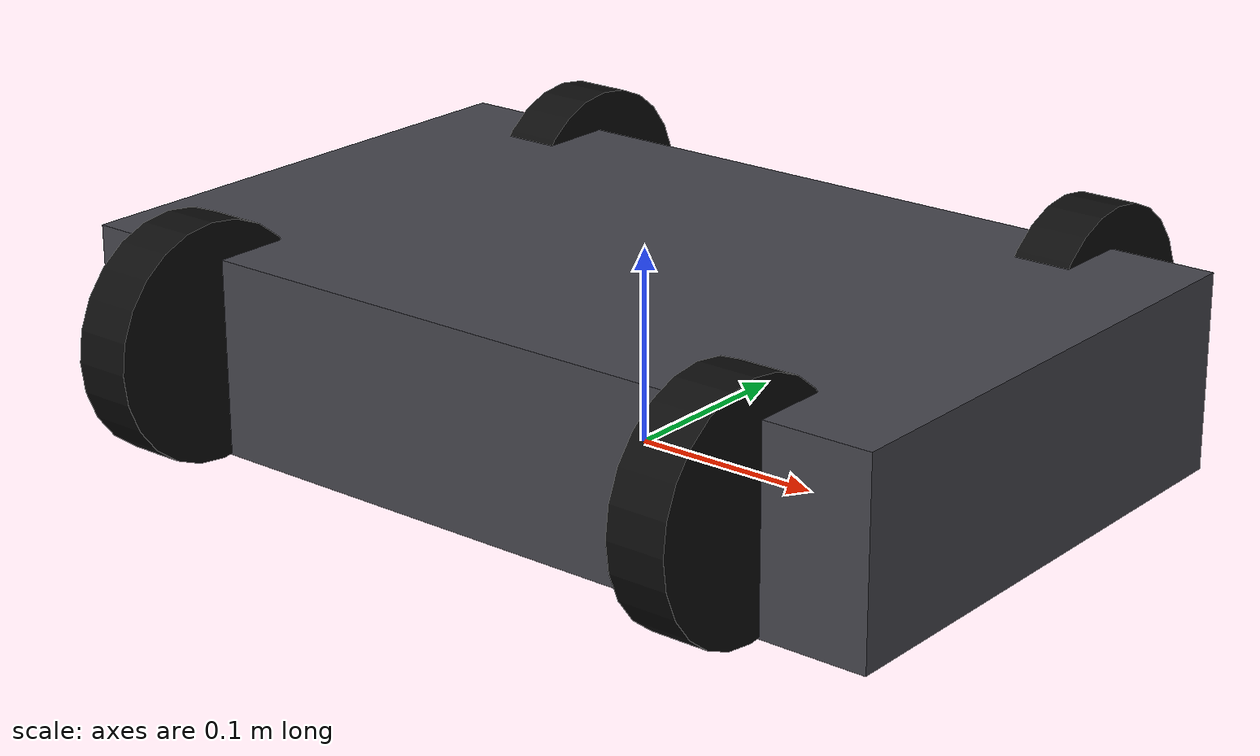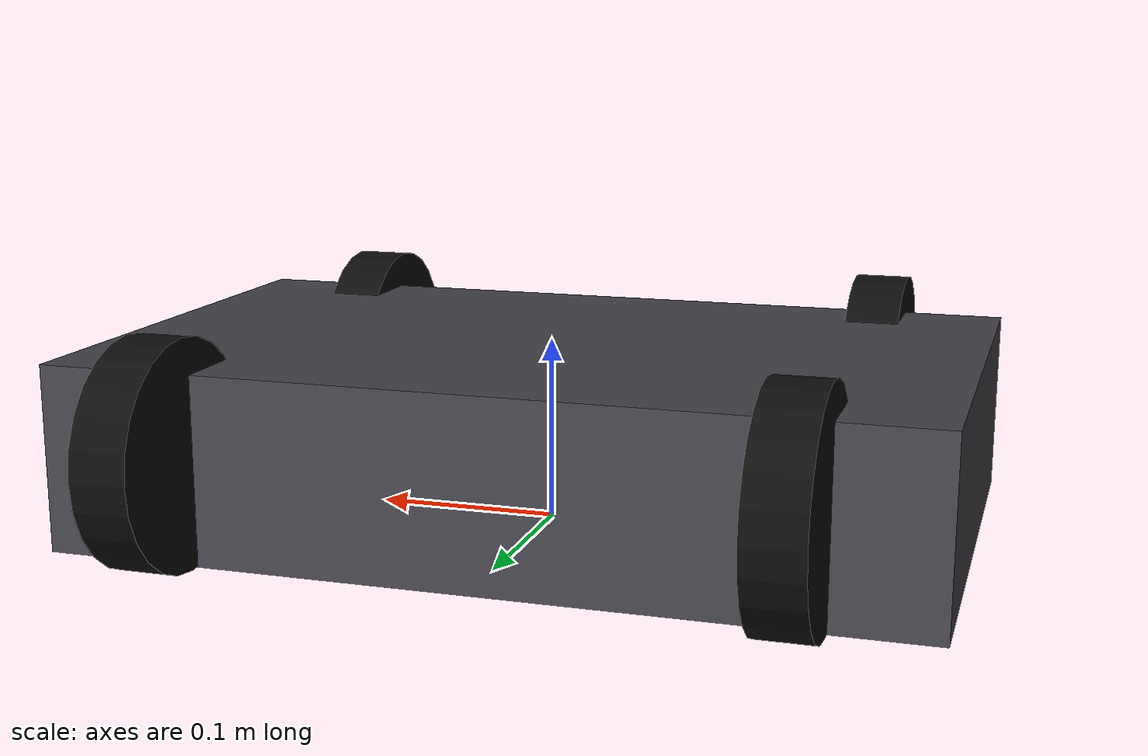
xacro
<?xml version="1.0"?>
<robot name="rc_car" xmlns:xacro="http://www.ros.org/wiki/xacro">
  <!-- Basic dimensions -->
  <xacro:property name="chassis_length" value="0.46"/>
  <xacro:property name="chassis_width" value="0.28"/>
  <xacro:property name="chassis_height" value="0.10"/>
  <xacro:property name="wheel_radius" value="0.06"/>
  <xacro:property name="wheel_thickness" value="0.03"/>

  <!-- Placement helpers -->
  <xacro:property name="wheel_base_x" value="${chassis_length / 2.0 - 0.07}"/>
  <xacro:property name="wheel_track_y" value="${chassis_width / 2.0 + wheel_thickness / 2.0 - 0.01}"/>
  <xacro:property name="axle_height" value="${wheel_radius}"/>

  <!-- Mass and inertia approximations -->
  <xacro:property name="chassis_mass" value="3.0"/>
  <xacro:property name="wheel_mass" value="0.25"/>
  <xacro:property name="steer_mass" value="0.05"/>

  <xacro:property name="chassis_ixx" value="${chassis_mass / 12.0 * (chassis_height*chassis_height + chassis_width*chassis_width)}"/>
  <xacro:property name="chassis_iyy" value="${chassis_mass / 12.0 * (chassis_length*chassis_length + chassis_height*chassis_height)}"/>
  <xacro:property name="chassis_izz" value="${chassis_mass / 12.0 * (chassis_length*chassis_length + chassis_width*chassis_width)}"/>

  <xacro:property name="wheel_ixx" value="${wheel_mass / 12.0 * (3*wheel_radius*wheel_radius + wheel_thickness*wheel_thickness)}"/>
  <xacro:property name="wheel_iyy" value="${wheel_ixx}"/>
  <xacro:property name="wheel_izz" value="${0.5 * wheel_mass * wheel_radius * wheel_radius}"/>

  <!-- Materials -->
  <material name="chassis_grey">
    <color rgba="0.27 0.27 0.3 1.0"/>
  </material>
  <material name="wheel_black">
    <color rgba="0.05 0.05 0.05 1.0"/>
  </material>

  <xacro:macro name="wheel" params="name parent xyz">
    <link name="${name}">
      <inertial>
        <origin xyz="0 0 0" rpy="0 0 0"/>
        <mass value="${wheel_mass}"/>
        <inertia ixx="${wheel_ixx}" ixy="0.0" ixz="0.0" iyy="${wheel_iyy}" iyz="0.0" izz="${wheel_izz}"/>
      </inertial>
      <visual>
        <origin xyz="0 0 0" rpy="0 1.5708 0"/>
        <geometry>
          <cylinder radius="${wheel_radius}" length="${wheel_thickness}"/>
        </geometry>
        <material name="wheel_black"/>
      </visual>
      <collision>
        <origin xyz="0 0 0" rpy="0 1.5708 0"/>
        <geometry>
          <cylinder radius="${wheel_radius}" length="${wheel_thickness}"/>
        </geometry>
      </collision>
    </link>
    <joint name="${name}_joint" type="continuous">
      <parent link="${parent}"/>
      <child link="${name}"/>
      <origin xyz="${xyz}" rpy="0 0 0"/>
      <axis xyz="0 1 0"/>
    </joint>
    <gazebo reference="${name}">
      <mu1>1.2</mu1>
      <mu2>1.2</mu2>
      <kp>80000.0</kp>
      <kd>20.0</kd>
    </gazebo>
  </xacro:macro>

  <xacro:macro name="steered_wheel" params="name parent xyz">
    <link name="${name}_steer">
      <inertial>
        <origin xyz="0 0 0" rpy="0 0 0"/>
        <mass value="${steer_mass}"/>
        <inertia ixx="0.0002" ixy="0.0" ixz="0.0" iyy="0.0002" iyz="0.0" izz="0.0002"/>
      </inertial>
      <visual>
        <origin xyz="0 0 0" rpy="0 0 0"/>
        <geometry>
          <cylinder radius="0.01" length="0.04"/>
        </geometry>
        <material name="chassis_grey"/>
      </visual>
      <collision>
        <origin xyz="0 0 0" rpy="0 0 0"/>
        <geometry>
          <cylinder radius="0.01" length="0.04"/>
        </geometry>
      </collision>
    </link>
    <joint name="${name}_steer_joint" type="revolute">
      <parent link="${parent}"/>
      <child link="${name}_steer"/>
      <origin xyz="${xyz}" rpy="0 0 0"/>
      <axis xyz="0 0 1"/>
      <limit lower="-0.6" upper="0.6" effort="10.0" velocity="1.5"/>
    </joint>
    <xacro:wheel name="${name}" parent="${name}_steer" xyz="0 0 0"/>
  </xacro:macro>

  <link name="base_link">
    <inertial>
      <origin xyz="0 0 ${chassis_height / 2.0}" rpy="0 0 0"/>
      <mass value="${chassis_mass}"/>
      <inertia ixx="${chassis_ixx}" ixy="0.0" ixz="0.0" iyy="${chassis_iyy}" iyz="0.0" izz="${chassis_izz}"/>
    </inertial>
    <visual>
      <origin xyz="0 0 ${chassis_height / 2.0}" rpy="0 0 0"/>
      <geometry>
        <box size="${chassis_length} ${chassis_width} ${chassis_height}"/>
      </geometry>
      <material name="chassis_grey"/>
    </visual>
    <collision>
      <origin xyz="0 0 ${chassis_height / 2.0}" rpy="0 0 0"/>
      <geometry>
        <box size="${chassis_length} ${chassis_width} ${chassis_height}"/>
      </geometry>
    </collision>
  </link>

  <xacro:steered_wheel name="front_left_wheel" parent="base_link" xyz="${wheel_base_x} ${wheel_track_y} ${axle_height}"/>
  <xacro:steered_wheel name="front_right_wheel" parent="base_link" xyz="${wheel_base_x} ${-wheel_track_y} ${axle_height}"/>
  <xacro:wheel name="rear_left_wheel" parent="base_link" xyz="${-wheel_base_x} ${wheel_track_y} ${axle_height}"/>
  <xacro:wheel name="rear_right_wheel" parent="base_link" xyz="${-wheel_base_x} ${-wheel_track_y} ${axle_height}"/>

  <gazebo reference="base_link">
    <material>Gazebo/Grey</material>
    <mu1>1.2</mu1>
    <mu2>1.2</mu2>
    <kp>80000.0</kp>
    <kd>20.0</kd>
  </gazebo>
</robot>
